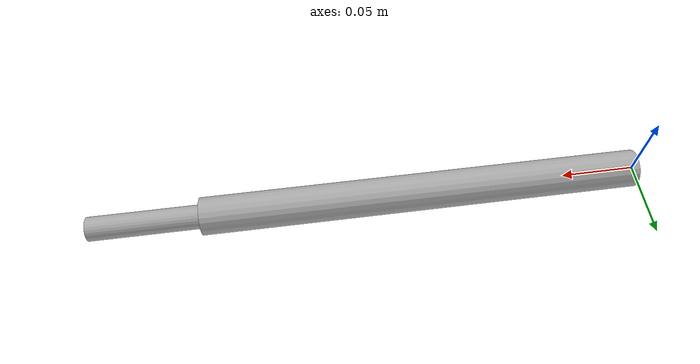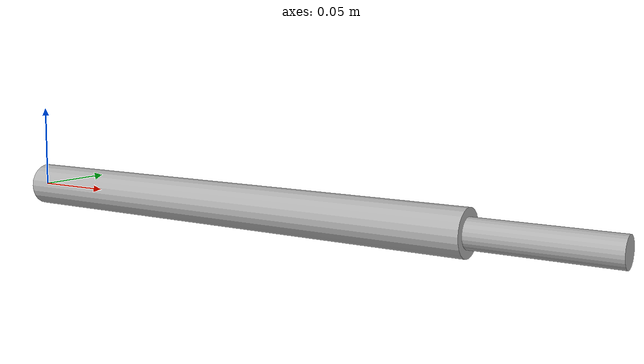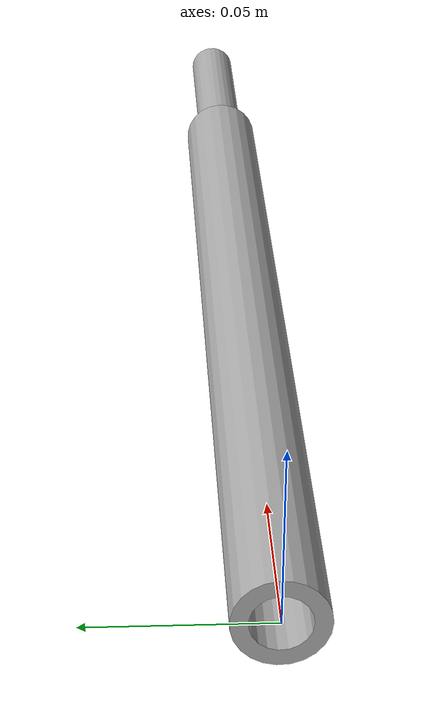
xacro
<?xml version="1.0" ?>
<robot name="linear_actuator3" xmlns:xacro="http://www.ros.org/wiki/xacro">

<xacro:include filename="$(find linear_actuator3_description)/urdf/materials.xacro" />
<xacro:include filename="$(find linear_actuator3_description)/urdf/linear_actuator3.trans" />
<xacro:include filename="$(find linear_actuator3_description)/urdf/linear_actuator3.gazebo" />
<link name="base_link">
  <inertial>
    <origin xyz="0.14999999999999997 -1.5371850876519193e-18 -1.5371850876519193e-18" rpy="0 0 0"/>
    <mass value="0.7257109791816839"/>
    <inertia ixx="8.4e-05" iyy="0.005485" izz="0.005485" ixy="-0.0" iyz="-0.0" ixz="-0.0"/>
  </inertial>
  <visual>
    <origin xyz="0 0 0" rpy="0 0 0"/>
    <geometry>
      <mesh filename="package://linear_actuator3_description/meshes/base_link.stl" scale="0.001 0.001 0.001"/>
    </geometry>
    <material name="silver"/>
  </visual>
  <collision>
    <origin xyz="0 0 0" rpy="0 0 0"/>
    <geometry>
      <mesh filename="package://linear_actuator3_description/meshes/base_link.stl" scale="0.001 0.001 0.001"/>
    </geometry>
  </collision>
</link>

<link name="child_1">
  <inertial>
    <origin xyz="-0.07493884347844576 0.0 0.0" rpy="0 0 0"/>
    <mass value="0.24718232230056653"/>
    <inertia ixx="8e-06" iyy="0.000468" izz="0.000468" ixy="0.0" iyz="-0.0" ixz="0.0"/>
  </inertial>
  <visual>
    <origin xyz="-0.3 -0.0 -0.0" rpy="0 0 0"/>
    <geometry>
      <mesh filename="package://linear_actuator3_description/meshes/child_1.stl" scale="0.001 0.001 0.001"/>
    </geometry>
    <material name="silver"/>
  </visual>
  <collision>
    <origin xyz="-0.3 -0.0 -0.0" rpy="0 0 0"/>
    <geometry>
      <mesh filename="package://linear_actuator3_description/meshes/child_1.stl" scale="0.001 0.001 0.001"/>
    </geometry>
  </collision>
</link>

<joint name="Slider2" type="prismatic">
  <origin xyz="0.3 0.0 0.0" rpy="0 0 0"/>
  <parent link="base_link"/>
  <child link="child_1"/>
  <axis xyz="1.0 0.0 0.0"/>
  <limit  lower = "-0.015" upper = "0.015" effort="2" velocity="2"/>
</joint>

</robot>

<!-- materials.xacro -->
<robot name="linear_actuator3" xmlns:xacro="http://www.ros.org/wiki/xacro" >

<material name="silver">
  <color rgba="0.700 0.700 0.700 1.000"/>
</material>

</robot>

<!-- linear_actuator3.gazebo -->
<robot name="linear_actuator3" xmlns:xacro="http://www.ros.org/wiki/xacro" >

<xacro:property name="body_color" value="Gazebo/Silver" />

<gazebo>
  <plugin name="gazebo_ros_control" filename="libgazebo_ros_control.so">
     <robotNamespace>/linear_actuator3</robotNamespace>
     <robotSimType>gazebo_ros_control/DefaultRobotHWSim</robotSimType>

  </plugin>
</gazebo>
<gazebo reference="base_link">
  <material>${body_color}</material>

  <selfCollide>true</selfCollide>
  <gravity>true</gravity>
</gazebo>

<gazebo reference="child_1">
  <material>${body_color}</material>

  <selfCollide>true</selfCollide>
  <gravity>true</gravity>
</gazebo>

</robot>
